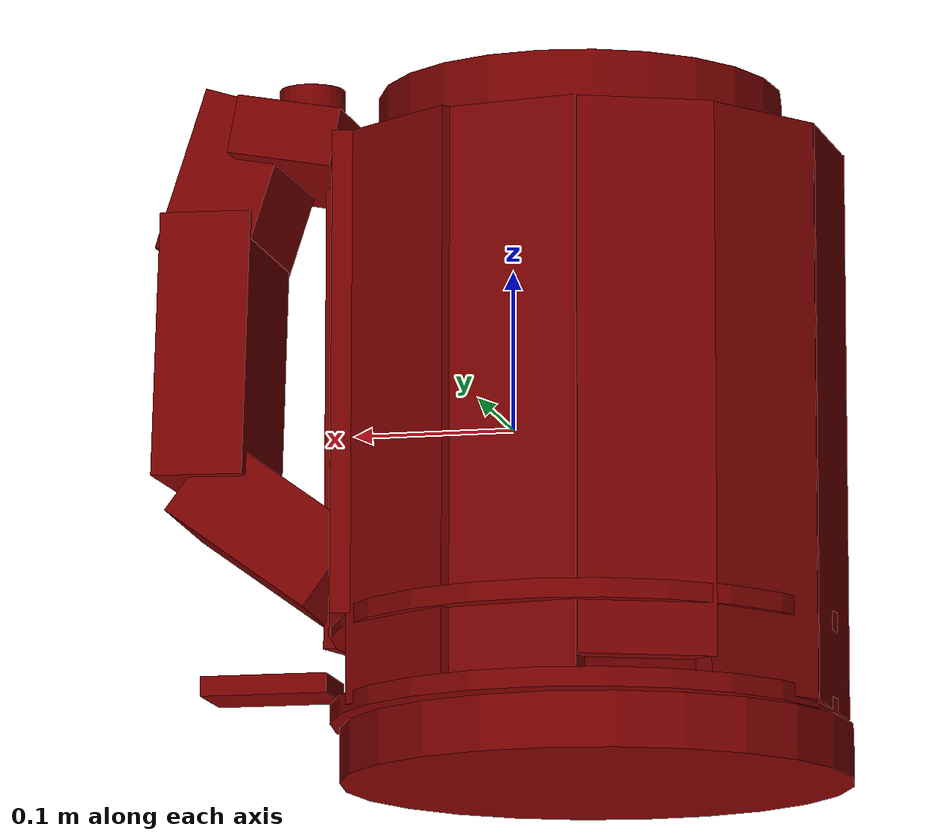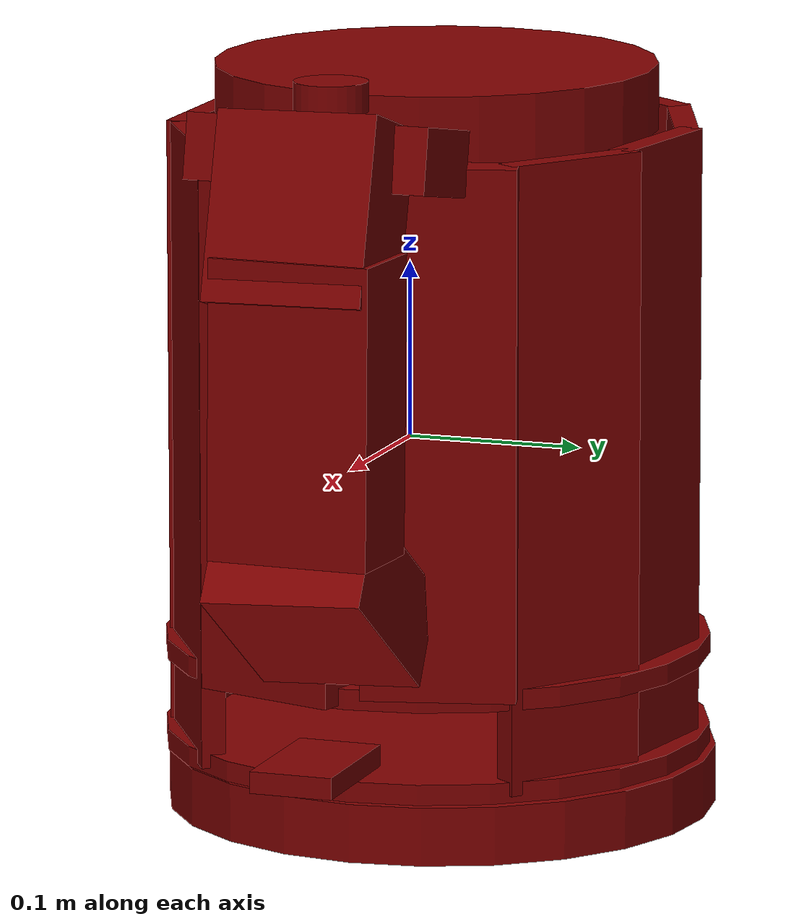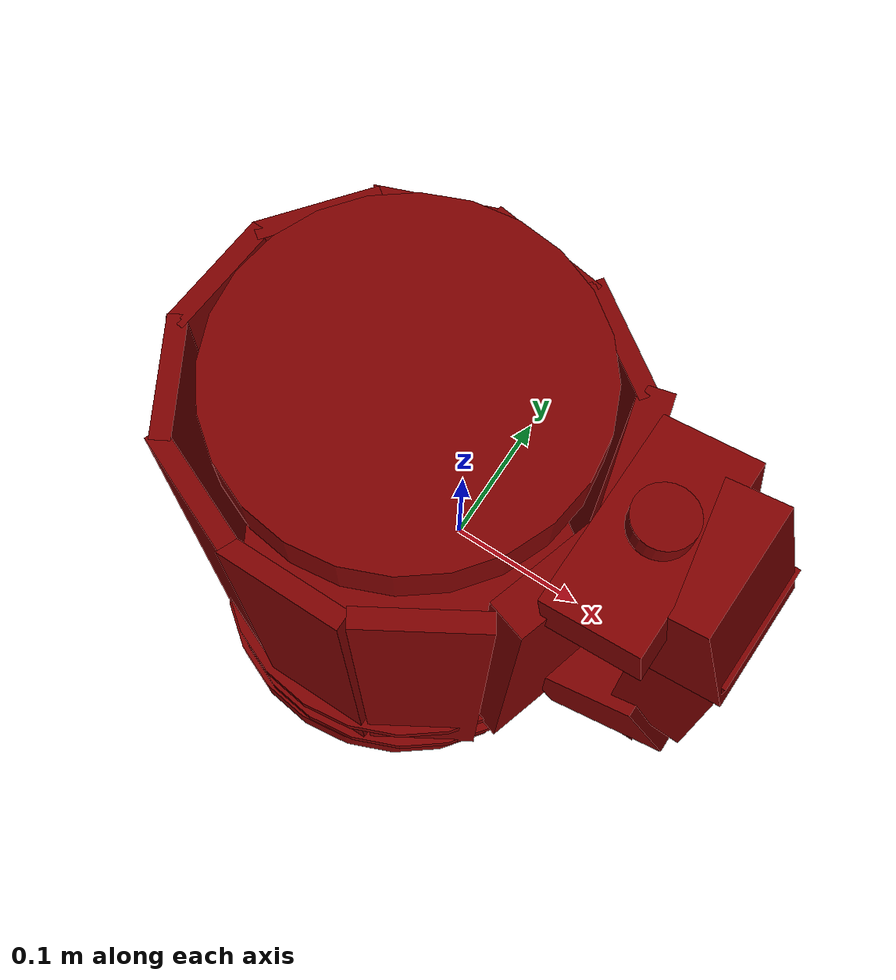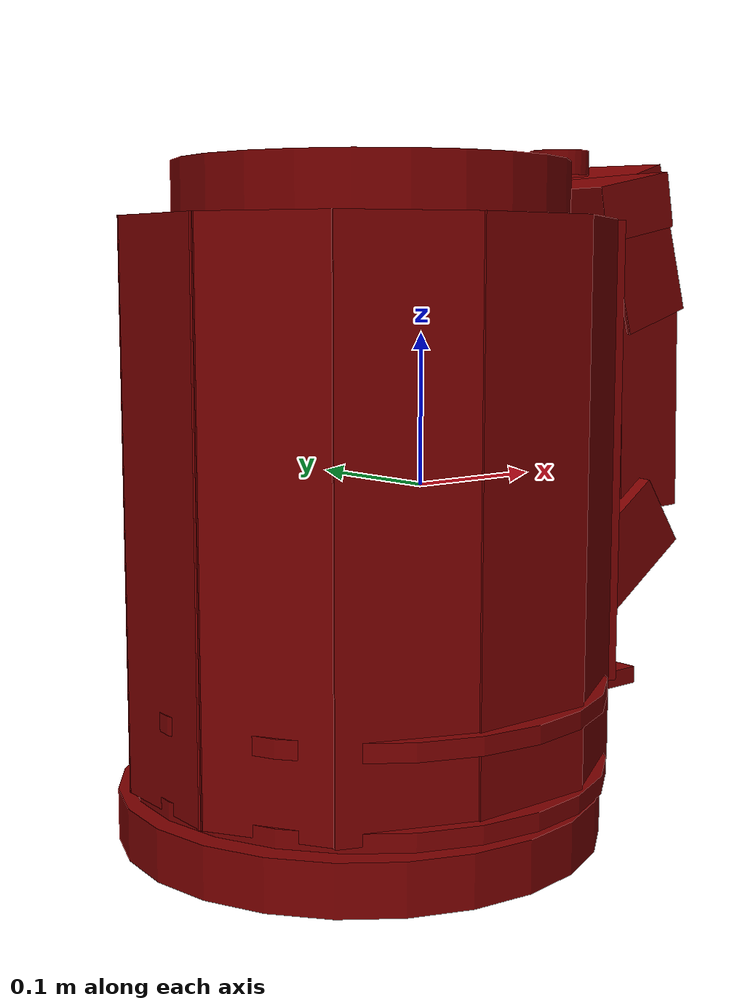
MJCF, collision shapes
<?xml version='1.0' encoding='UTF-8'?>
<mujoco model="model">
  <option timestep="0.002" gravity="0.0 0.0 -9.81"/>
  <compiler angle="radian"/>
  <asset>
    <mesh file="visuals/button_lid.obj" name="button_lid_vis"/>
    <mesh file="visuals/Body001.obj" name="Body001_vis"/>
    <mesh file="visuals/kettle_main.obj" name="kettle_main_vis"/>
    <mesh file="visuals/lid.obj" name="lid_vis"/>
    <mesh file="visuals/switch.obj" name="switch_vis"/>
    <texture file="visuals/T_BC001.png" name="Body001_material" type="2d"/>
    <material name="Body001_material" rgba="1 1 1 1.0" texture="Body001_material" shininess="0.5" specular="1"/>
    <texture file="visuals/T_BC001.png" name="kettle_main_material" type="2d"/>
    <material name="kettle_main_material" rgba="1 1 1 1.0" texture="kettle_main_material" shininess="0.5" specular="1"/>
    <texture file="visuals/T_BC001.png" name="button_lid_material" type="2d"/>
    <material name="button_lid_material" rgba="1 1 1 1.0" texture="button_lid_material" shininess="0.5" specular="1"/>
    <texture file="visuals/T_BC001.png" name="lid_material" type="2d"/>
    <material name="lid_material" rgba="1 1 1 1.0" texture="lid_material" shininess="0.5" specular="1"/>
    <texture file="visuals/T_BC001.png" name="switch_material" type="2d"/>
    <material name="switch_material" rgba="1 1 1 1.0" texture="switch_material" shininess="0.5" specular="1"/>
  </asset>
  <default>
    <default class="visual">
      <geom conaffinity="0" contype="0" group="1" type="mesh"/>
    </default>
    <default class="collision">
      <geom group="0" rgba="0.5 0 0 0.5"/>
    </default>
    <default class="spawn">
      <geom group="0" rgba="1 1 1 0.5" contype="0" conaffinity="0"/>
      <site group="0" rgba="1 1 1 0.5"/>
    </default>
    <default class="region">
      <geom group="1" conaffinity="0" contype="0" rgba="0 1 0 0" mass="0"/>
    </default>
  </default>
  <worldbody>
    <body>
      <body name="object">
        <geom mesh="Body001_vis" type="mesh" solimp="0.998 0.998 0.001" solref="0.001 1" friction="0.95 0.3 0.1" class="visual" material="Body001_material"/>
        <geom type="cylinder" pos="-0.05256148 0.00076833 -0.20482340" size="0.15676099061965942 0.016660800203680992" quat="0.7071068286895752 0.0 -0.0 -0.7071067690849304" class="collision"/>
        <body name="kettle_main">
          <geom mesh="kettle_main_vis" type="mesh" solimp="0.998 0.998 0.001" solref="0.001 1" friction="0.95 0.3 0.1" class="visual" material="kettle_main_material"/>
          <geom type="box" pos="-0.03934509 -0.13682811 -0.00440694" size="0.043306924402713776 0.006925547029823065 0.17692293226718903" quat="1.0 0.0 0.0 0.0" class="collision"/>
          <geom type="box" pos="-0.11940638 -0.11947028 -0.00440694" size="0.006898260675370693 0.04330328479409218 0.17692464590072632" quat="0.5532516241073608 0.0 -0.0 -0.833014190196991" class="collision"/>
          <geom type="box" pos="-0.17512400 -0.06745032 -0.00440694" size="0.006898260675370693 0.04330328851938248 0.17692464590072632" quat="0.25606197118759155 0.0 -0.0 -0.9666603803634644" class="collision"/>
          <geom type="box" pos="-0.19253862 0.00725446 -0.00440694" size="0.006898260675370693 0.04330328851938248 0.17692464590072632" quat="0.029425621032714844 0.0 0.0 0.9995669722557068" class="collision"/>
          <geom type="box" pos="-0.16530633 0.07994157 -0.00440694" size="0.006898260675370693 0.04330328479409218 0.17692464590072632" quat="0.3242883086204529 0.0 0.0 0.9459583163261414" class="collision"/>
          <geom type="box" pos="-0.10445009 0.12631658 0.00407826" size="0.006898260675370693 0.04330328851938248 0.16843943297863007" quat="0.5682376027107239 0.0 0.0 0.8228645324707031" class="collision"/>
          <geom type="box" pos="-0.02755211 0.13489950 -0.00440694" size="0.006898260209709406 0.04330328851938248 0.17692464590072632" quat="0.7656922936439514 0.0 0.0 0.6432070136070251" class="collision"/>
          <geom type="box" pos="0.04096090 -0.11184327 -0.00440694" size="0.006898260675370693 0.04330328479409218 0.17692464590072632" quat="0.8710189461708069 0.0 -0.0 -0.4912493824958801" class="collision"/>
          <geom type="box" pos="0.09459203 -0.04418465 0.02078977" size="0.014288175851106644 0.04330328851938248 0.15172792971134186" quat="0.988697350025177 0.0 -0.0 -0.1499251127243042" class="collision"/>
          <geom type="box" pos="0.09216165 0.04950542 0.02320032" size="0.011540213599801064 0.04330328851938248 0.14931738376617432" quat="0.9926108717918396 0.0 0.0 0.12134098261594772" class="collision"/>
          <geom type="cylinder" pos="-0.04511060 0.00072894 -0.17934528" size="0.15548908710479736 0.005814768839627504" quat="0.7071068286895752 0.0 -0.0 -0.7071067690849304" class="collision"/>
          <geom class="collision" type="box" pos="0.12932296 -0.00232627 0.18151863" size="0.018407177180051804 0.03315243497490883 0.06951679289340973" quat="0.4461967647075653 -0.457174688577652 -0.5419254899024963 -0.5460920333862305" name="handle_3"/>
          <geom class="collision" type="box" pos="0.17196185 0.00248766 0.15573531" size="0.028995146974921227 0.045845359563827515 0.05249138921499252" quat="0.9882217645645142 0.008173669688403606 -0.15205948054790497 -0.015128699131309986" name="handle_1"/>
          <geom class="collision" type="box" pos="0.18456097 0.00606111 0.05316522" size="0.028995145112276077 0.045845359563827515 0.08278486877679825" quat="0.9998233318328857 -0.0001763785257935524 -0.012890664860606194 -0.013680236414074898" name="handle_main"/>
          <geom class="collision" type="box" pos="0.14799751 -0.00038993 -0.06021000" size="0.028979690745472908 0.04581586644053459 0.05459216237068176" quat="0.8901342153549194 0.021806973963975906 0.4551183879375458 0.007267707493156195" name="handle_2"/>
          <geom type="cylinder" pos="-0.04511060 0.00072894 -0.12674578" size="0.15548908710479736 0.005814768839627504" quat="0.7071068286895752 0.0 -0.0 -0.7071067690849304" class="collision"/>
          <geom type="box" pos="0.04493646 0.10895996 -0.00440694" size="0.006898260675370693 0.04330328851938248 0.17692464590072632" quat="0.8912816047668457 0.0 0.0 0.4534502625465393" class="collision"/>
          <body name="button_lid">
            <joint axis="0.0 0.0 -1.0" pos="0.12891348 -0.00085674 0.21530540" limited="true" name="button_lid_joint" range="0.0 0.004" type="slide" damping="50" frictionloss="1" armature=".01" stiffness="1" springref="-1"/>
            <geom mesh="button_lid_vis" type="mesh" solimp="0.998 0.998 0.001" solref="0.001 1" friction="0.95 0.3 0.1" class="visual" material="button_lid_material"/>
            <geom class="collision" type="cylinder" pos="0.12851875 0.00010779 0.21387827" size="0.020532997325062752 0.008367075584828854" quat="0.7071068286895752 0.0 -0.0 -0.7071067690849304" name="button_lid_main"/>
          </body>
          <body name="lid">
            <joint axis="0.0 1.0 0.0" pos="0.09161934 -0.00000001 0.20000011" limited="true" name="lid_joint" range="0.0 1.5707963267948966" type="hinge" damping="1" frictionloss="0.1" armature=".01" stiffness="0.05" springref="-5"/>
            <geom mesh="lid_vis" type="mesh" solimp="0.998 0.998 0.001" solref="0.001 1" friction="0.95 0.3 0.1" class="visual" material="lid_material"/>
            <geom class="collision" type="cylinder" pos="-0.04285237 0.00072894 0.18823843" size="0.12505315172672272 0.018849924206733704" quat="0.7071068286895752 0.0 -0.0 -0.7071067690849304" name="lid_main"/>
          </body>
          <body name="switch">
            <joint axis="0.0 0.0 -1.0" pos="0.12425894 -0.00074798 -0.15846510" limited="true" name="switch_joint" range="0.0 0.012" type="slide" damping="50" frictionloss="1" armature=".01" stiffness="0.10" springref="-1"/>
            <geom mesh="switch_vis" type="mesh" solimp="0.998 0.998 0.001" solref="0.001 1" friction="0.95 0.3 0.1" class="visual" material="switch_material"/>
            <geom class="collision" type="box" pos="0.15188211 -0.00157719 -0.15636489" size="0.03971659764647484 0.023575706407427788 0.006145521532744169" quat="1.0 0.0 0.0 0.0" name="switch_main"/>
          </body>
        </body>
        <geom class="region" name="reg_main" type="box" pos="2.700000000105396e-07 0.0 -1.000000000861423e-08" size="0.21412742 0.14868068 0.22249818999999998"/>
      </body>
    </body>
  </worldbody>
  <actuator>
    <motor name="button_lid_joint_actuator" joint="button_lid_joint" gear="0.5"/>
    <motor name="lid_joint_actuator" joint="lid_joint" gear="0.5"/>
    <motor name="switch_joint_actuator" joint="switch_joint" gear="0.5"/>
  </actuator>
</mujoco>
